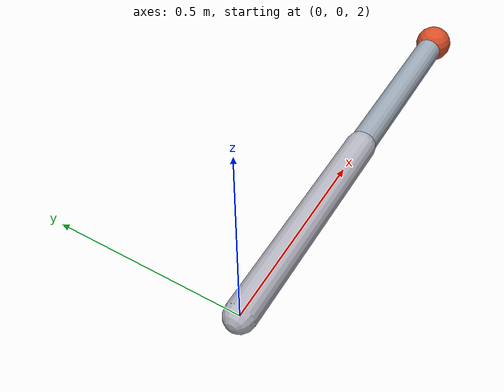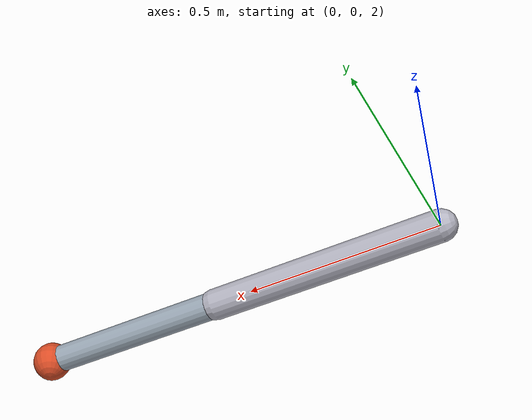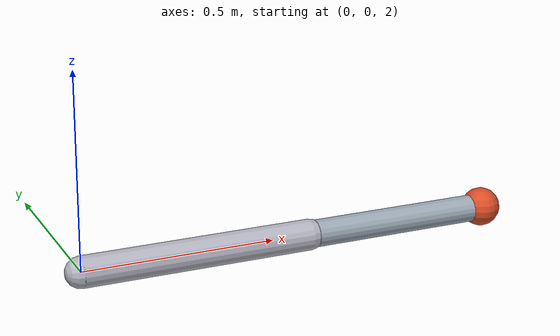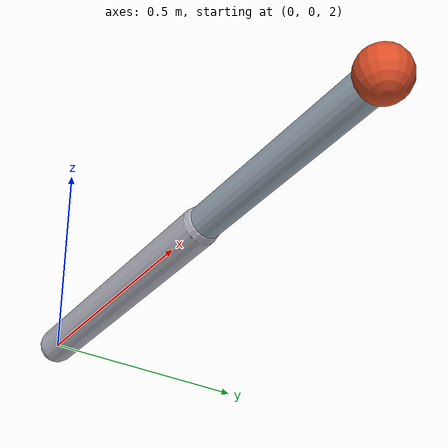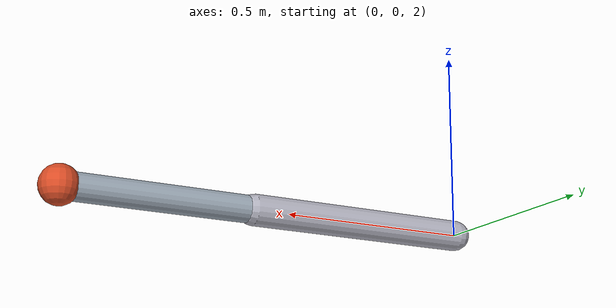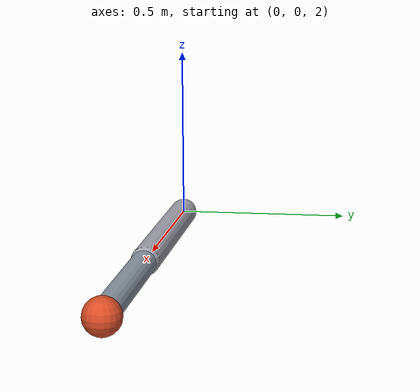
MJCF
<mujoco model="two-link-arm">
  <compiler angle="radian"/>
  <option gravity="0 0 -9.81" timestep="0.002" integrator="RK4">
    <flag energy="enable"/>
  </option>

  <worldbody>
    <body name="upper" pos="0 0 2">
      <joint name="shoulder" type="hinge" axis="0 1 0"/>
      <geom name="upper_arm" type="capsule" size="0.04"
            fromto="0 0 0 0.6 0 0" mass="1.0" rgba="0.7 0.7 0.75 1"/>
      <body name="lower" pos="0.6 0 0">
        <joint name="elbow" type="hinge" axis="0 1 0"/>
        <geom name="forearm" type="capsule" size="0.035"
              fromto="0 0 0 0.5 0 0" mass="0.7" rgba="0.6 0.65 0.7 1"/>
        <geom name="hand" type="sphere" size="0.05" pos="0.5 0 0"
              mass="0.3" rgba="0.85 0.30 0.15 1"/>
      </body>
    </body>
  </worldbody>

  <actuator>
    <position name="shoulder_ctrl" joint="shoulder" kp="50" kv="5"/>
    <position name="elbow_ctrl"    joint="elbow"    kp="50" kv="5"/>
  </actuator>

  <keyframe>
    <key name="home"
         qpos="1.5708 0.0"
         ctrl="1.5708 0.0"/>
    <key name="reach-left"
         qpos="0.5236 -0.7854"
         ctrl="0.5236 -0.7854"/>
    <key name="reach-right"
         qpos="2.6180 0.7854"
         ctrl="2.6180 0.7854"/>
  </keyframe>
</mujoco>
